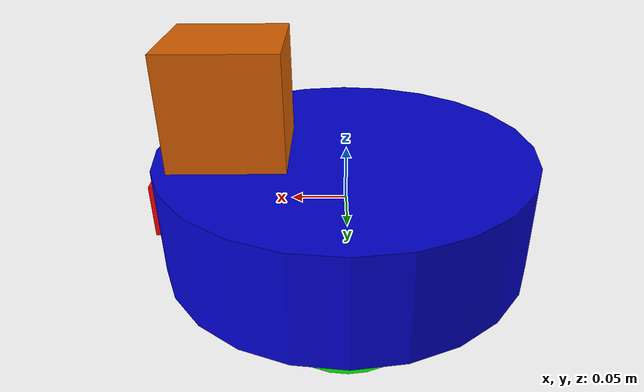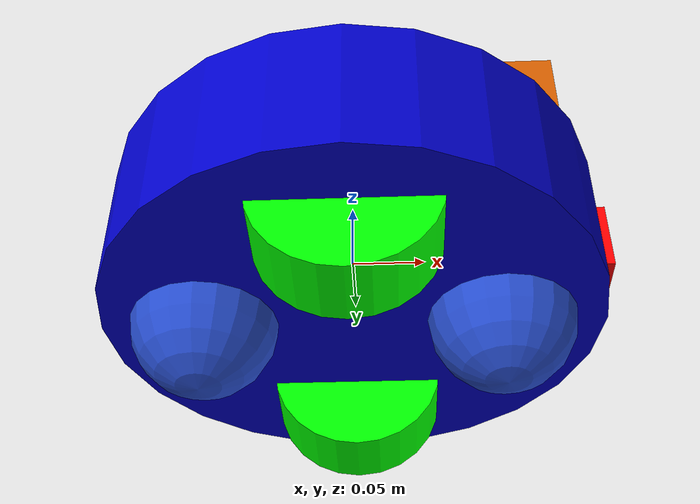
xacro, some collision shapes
<?xml version='1.0'?>

<robot name="my_robot" xmlns:xacro="http://www.ros.org/wiki/xacro">

  <xacro:include filename="$(find my_robot)/urdf/my_robot.gazebo" />

  <material name="blue">
    <color rgba="0 0 0.8 1"/>
  </material>
  <material name="green">
    <color rgba="0 1 0 1"/>
  </material>
  <material name="red">
    <color rgba="1 0 0 1"/>
  </material>

  <link name="robot_footprint"></link>

  <link name='chassis'>
	  <pose>0 0 0.1 0 0 0</pose>

      <inertial>
    	  <mass value="15.0"/>
    	  <origin xyz="0.0 0 0" rpy=" 0 0 0"/>
    	  <inertia
          ixx="0.1" ixy="0" ixz="0"
          iyy="0.1" iyz="0"
          izz="0.1"
      	  />
      </inertial>

    <collision name='collision'>
      <origin xyz="0 0 0" rpy=" 0 0 0"/>
      <geometry>
        <box size=".3 .15 .1"/>
      </geometry>
    </collision>

    <visual name='chassis_visual'>
      <origin xyz="0 0 0" rpy=" 0 0 0"/>
      <geometry>
        <cylinder radius="0.17" length="0.1"/>
      </geometry>
      <material name="blue"/>
    </visual>

    <collision name='back_caster_collision'>
      <origin xyz="-0.1 0 -0.05" rpy=" 0 0 0"/>
      <geometry>
        <sphere radius="0.0499"/>
      </geometry>
    </collision>

    <visual name='back_caster_visual'>
      <origin xyz="-0.1 0 -0.05" rpy=" 0 0 0"/>
      <geometry>
        <sphere radius="0.05"/>
      </geometry>
    </visual>

    <collision name='front_caster_collision'>
      <origin xyz="0.1 0 -0.05" rpy=" 0 0 0"/>
      <geometry>
        <sphere radius="0.0499"/>
      </geometry>
    </collision>

    <visual name='front_caster_visual'>
      <origin xyz="0.1 0 -0.05" rpy=" 0 0 0"/>
      <geometry>
        <sphere radius="0.05"/>
      </geometry>
    </visual>

  </link>

  <gazebo reference = "chassis">
    <material> Gazebo/Blue </material>
  </gazebo>

  <link name="left_wheel">
	  <inertial>
    	<mass value="5.0"/>
    	<origin xyz="0.0 0 0" rpy=" 0 1.5707 1.5707"/>
    	<inertia
          ixx="0.1" ixy="0" ixz="0"
          iyy="0.1" iyz="0"
          izz="0.1"
      	/>
    </inertial>

	  <visual name='left_wheel'>
      <origin xyz="0 0 0" rpy=" 0 1.5707 1.5707"/>
      <geometry>
        <cylinder radius="0.06" length="0.05"/>
      </geometry>
      <material name="green"/>
    </visual>

	  <collision name='left_wheel'>
      <origin xyz="0 0 0" rpy=" 0 1.5707 1.5707"/>
      <geometry>
        <cylinder radius="0.06" length="0.05"/>
      </geometry>
    </collision>

  </link>

  <gazebo reference = "left_wheel">
    <material> Gazebo/Green </material>
  </gazebo>

  <link name="right_wheel">
	  <inertial>
    	<mass value="5.0"/>
    	<origin xyz="0.0 0 0" rpy=" 0 1.5707 1.5707"/>
    	<inertia
          ixx="0.1" ixy="0" ixz="0"
          iyy="0.1" iyz="0"
          izz="0.1"
      	/>
    </inertial>

	  <visual name='right_wheel'>
      <origin xyz="0 0 0" rpy=" 0 1.5707 1.5707"/>
      <geometry>
        <cylinder radius="0.06" length="0.05"/>
      </geometry>
      <material name="green"/>
    </visual>

	  <collision name='right_wheel'>
      <origin xyz="0 0 0" rpy=" 0 1.5707 1.5707"/>
      <geometry>
        <cylinder radius="0.06" length="0.05"/>
      </geometry>
    </collision>

  </link>

  <gazebo reference = "right_wheel">
    <material> Gazebo/Green </material>
  </gazebo>

  <link name="camera">

    <box_inertia x="0.05" y="0.05" z="0.05" m="0.1" />

    <inertial>
      <mass value="0.1"/>
      <origin xyz="0.0 0.0 0.0" rpy="0.0 0.0 0.0"/>
      <inertia ixx="1e-6" ixy="0" ixz="0" iyy="1e-6" iyz="0" izz="1e-6"/>
    </inertial>

    <visual name="camera">
      <origin xyz="0.0 0.0 0.0" rpy="0.0 0.0 0.0"/>
      <geometry>
        <box size="0.05 0.05 0.05"/>
      </geometry>
      <material name="red"/>
    </visual>

    <collision>
      <origin xyz="0.0 0.0 0.0" rpy="0.0 0.0 0.0"/>
      <geometry>
        <box size="0.05 0.05 0.05"/>
      </geometry>
    </collision>
  </link>

  <gazebo reference = "camera">
    <material> Gazebo/Red </material>
  </gazebo>

  <link name="hokuyo">
    <inertial>
      <origin xyz="0.0 0.0 0.0" rpy="0.0 0.0 0.0"/>
      <mass value="1e-5"/>
      <inertia ixx="1e-6" ixy="0" ixz="0" iyy="1e-6" iyz="0" izz="1e-6"/>
    </inertial>

    <visual name="hokuyo">
      <origin xyz="0.0 0.0 0.0" rpy="0.0 0.0 0.0"/>
      <geometry>
        <mesh filename="package://my_robot/meshes/hokuyo.dae" />
      </geometry>
    </visual>

    <collision>
      <origin xyz="0.0 0.0 0.0" rpy="0.0 0.0 0.0"/>
      <geometry>
        <box size="0.1 0.1 0.1"/>
      </geometry>
    </collision>
  </link>

  <joint type="continuous" name="left_wheel_hinge">
    <origin xyz="0 0.1 -0.04" rpy="0 0 0"/>
    <child link="left_wheel"/>
    <parent link="chassis"/>
    <axis xyz="0 1 0" rpy="0 0 0"/>
    <limit effort="10000" velocity="1000"/>
    <dynamics damping="1.0" friction="1.0"/>
  </joint>

  <joint type="continuous" name="right_wheel_hinge">
    <origin xyz="0 -0.1 -0.04" rpy="0 0 0"/>
    <child link="right_wheel"/>
    <parent link="chassis"/>
    <axis xyz="0 1 0" rpy="0 0 0"/>
    <limit effort="10000" velocity="1000"/>
    <dynamics damping="1.0" friction="1.0"/>
  </joint>

  <joint name="robot_footprint_joint" type="fixed">
    <origin xyz="0 0 0" rpy="0 0 0" />
    <parent link="robot_footprint"/>
    <child link="chassis" />
  </joint>

  <joint name="camera_name" type="fixed">
   <origin xyz="0.15 0.0 0.0" rpy="0.0 0.0 0.0"/>
   <parent link="chassis"/>
   <child link="camera"/>
   <axis xyz="0 1 0"/>
  </joint>

  <joint name="hokuyo_joint" type="fixed">
    <origin xyz="0.1 0.0 0.1" rpy="0.0 0.0 0.0"/>
    <parent link="chassis"/>
    <child link="hokuyo"/>
  </joint>

  <joint name="camera_optical_joint" type="fixed">
    <origin xyz="0 0 0" rpy="-1.5707 0 -1.5707"/>
    <parent link="camera"/>
    <child link="camera_link_optical"/>
  </joint>

  <link name="camera_link_optical">
  </link>

</robot>
